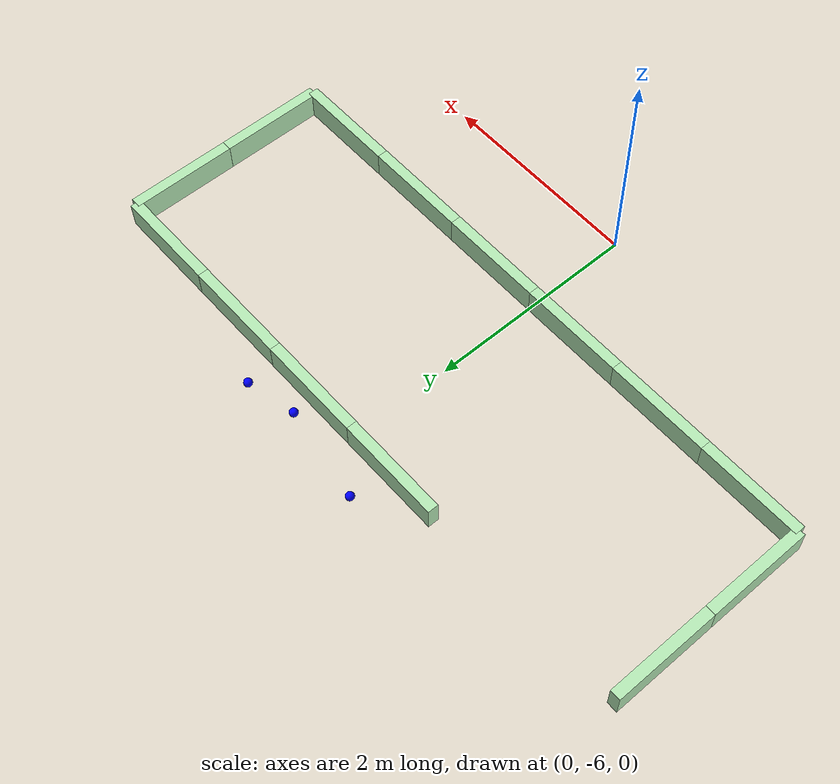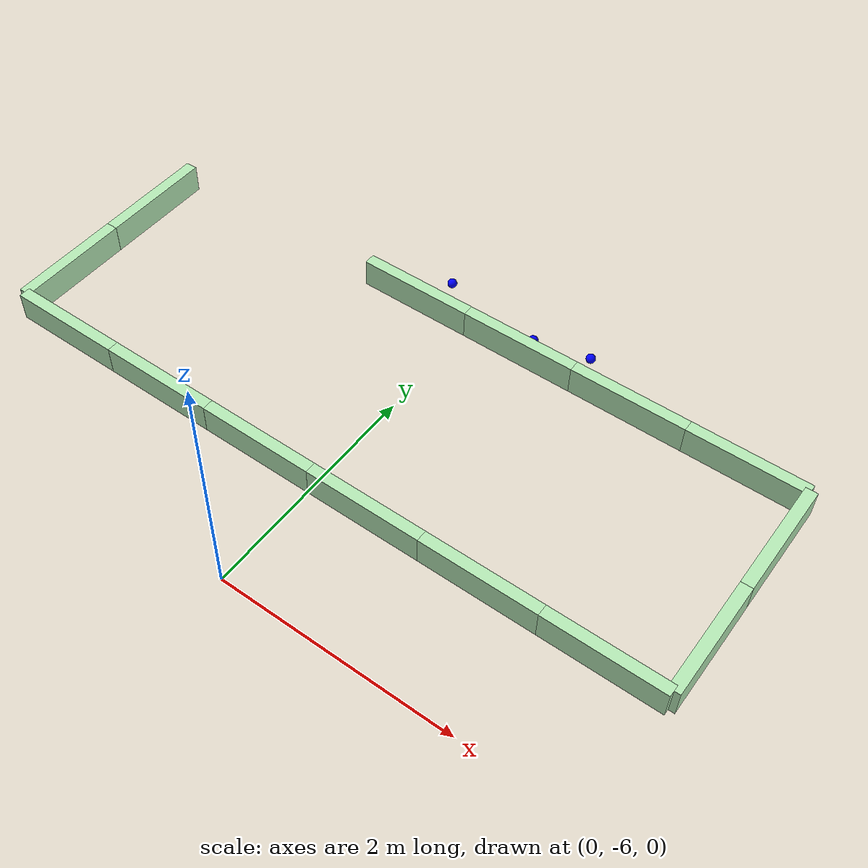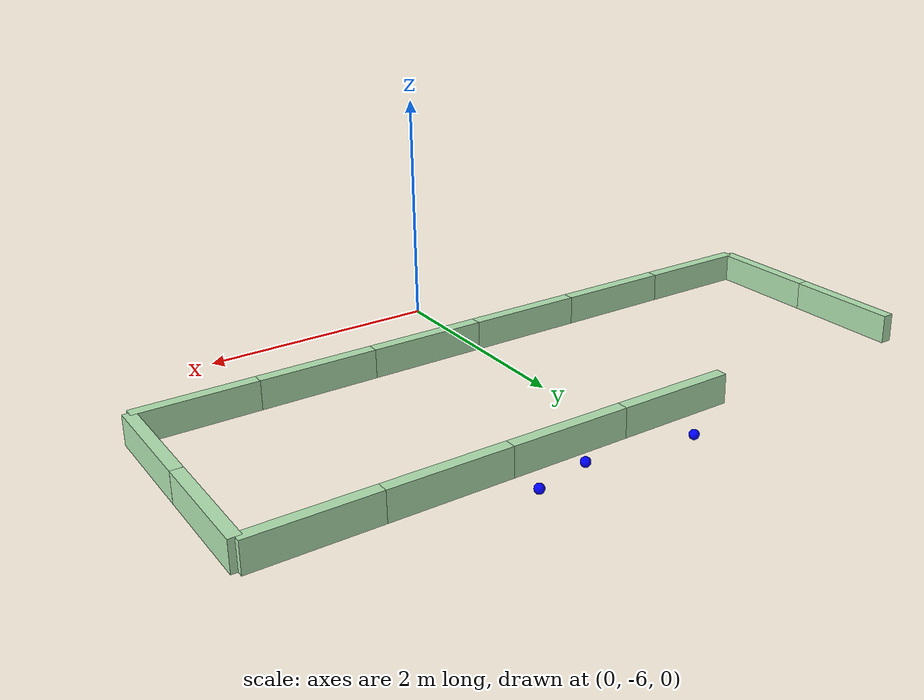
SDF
<sdf version="1.6">
 <world name="default">
  <model name="wall_100_25h_1_clone_3">
   <link name="link">
    <inertial>
     <mass>1</mass>
     <inertia>
      <ixx>0.166667</ixx>
      <ixy>0</ixy>
      <ixz>0</ixz>
      <iyy>0.166667</iyy>
      <iyz>0</iyz>
      <izz>0.166667</izz>
     </inertia>
    </inertial>
    <visual name="visual">
     <geometry><box><size>1 0.1 0.25</size></box></geometry>
     <material>
      <script><name>Gazebo/Grey</name><uri>file://media/materials/scripts/gazebo.material</uri></script>
      <ambient>0.3 0.5 0.3 1</ambient>
      <diffuse>0.7 0.9 0.7 1</diffuse>
      <specular>0.01 0.02 0.01 1</specular>
      <emissive>0 0 0 1</emissive>
      <lighting>1</lighting>
      <shader type="vertex"><normal_map>__default__</normal_map></shader>
     </material>
    </visual>
    <collision name="collision">
     <geometry><box><size>1 0.1 0.25</size></box></geometry>
     <surface>
      <friction>
       <ode><mu>1</mu><mu2>1</mu2><fdir1>0 0 0</fdir1><slip1>0</slip1><slip2>0</slip2></ode>
       <torsional>
        <coefficient>1</coefficient>
        <patch_radius>0</patch_radius>
        <surface_radius>0</surface_radius>
        <use_patch_radius>1</use_patch_radius>
        <ode><slip>0</slip></ode>
       </torsional>
      </friction>
      <bounce><restitution_coefficient>0</restitution_coefficient><threshold>1e+06</threshold></bounce>
      <contact>
       <collide_without_contact>0</collide_without_contact>
       <collide_without_contact_bitmask>1</collide_without_contact_bitmask>
       <collide_bitmask>1</collide_bitmask>
       <ode>
        <soft_cfm>0</soft_cfm>
        <soft_erp>0.2</soft_erp>
        <kp>1e+13</kp>
        <kd>1</kd>
        <max_vel>0.01</max_vel>
        <min_depth>0</min_depth>
       </ode>
       <bullet>
        <split_impulse>1</split_impulse>
        <split_impulse_penetration_threshold>-0.01</split_impulse_penetration_threshold>
        <soft_cfm>0</soft_cfm>
        <soft_erp>0.2</soft_erp>
        <kp>1e+13</kp>
        <kd>1</kd>
       </bullet>
      </contact>
     </surface>
    </collision>
   </link>
   <static>1</static>
   <pose>-0.5 -3 0.125 0.000404 -0 0</pose>
  </model>
  <model name="wall_100_25h_1_clone_4">
   <link name="link">
    <inertial>
     <mass>1</mass>
     <inertia>
      <ixx>0.166667</ixx>
      <ixy>0</ixy>
      <ixz>0</ixz>
      <iyy>0.166667</iyy>
      <iyz>0</iyz>
      <izz>0.166667</izz>
     </inertia>
    </inertial>
    <visual name="visual">
     <geometry><box><size>1 0.1 0.25</size></box></geometry>
     <material>
      <script><name>Gazebo/Grey</name><uri>file://media/materials/scripts/gazebo.material</uri></script>
      <ambient>0.3 0.5 0.3 1</ambient>
      <diffuse>0.7 0.9 0.7 1</diffuse>
      <specular>0.01 0.02 0.01 1</specular>
      <emissive>0 0 0 1</emissive>
      <lighting>1</lighting>
      <shader type="vertex"><normal_map>__default__</normal_map></shader>
     </material>
    </visual>
    <collision name="collision">
     <geometry><box><size>1 0.1 0.25</size></box></geometry>
     <surface>
      <friction>
       <ode><mu>1</mu><mu2>1</mu2><fdir1>0 0 0</fdir1><slip1>0</slip1><slip2>0</slip2></ode>
       <torsional>
        <coefficient>1</coefficient>
        <patch_radius>0</patch_radius>
        <surface_radius>0</surface_radius>
        <use_patch_radius>1</use_patch_radius>
        <ode><slip>0</slip></ode>
       </torsional>
      </friction>
      <bounce><restitution_coefficient>0</restitution_coefficient><threshold>1e+06</threshold></bounce>
      <contact>
       <collide_without_contact>0</collide_without_contact>
       <collide_without_contact_bitmask>1</collide_without_contact_bitmask>
       <collide_bitmask>1</collide_bitmask>
       <ode>
        <soft_cfm>0</soft_cfm>
        <soft_erp>0.2</soft_erp>
        <kp>1e+13</kp>
        <kd>1</kd>
        <max_vel>0.01</max_vel>
        <min_depth>0</min_depth>
       </ode>
       <bullet>
        <split_impulse>1</split_impulse>
        <split_impulse_penetration_threshold>-0.01</split_impulse_penetration_threshold>
        <soft_cfm>0</soft_cfm>
        <soft_erp>0.2</soft_erp>
        <kp>1e+13</kp>
        <kd>1</kd>
       </bullet>
      </contact>
     </surface>
    </collision>
   </link>
   <static>1</static>
   <pose>0.5 -3 0.125 0.000404 -0 0</pose>
  </model>
  <model name="wall_100_25h_1_clone_5">
   <link name="link">
    <inertial>
     <mass>1</mass>
     <inertia>
      <ixx>0.166667</ixx>
      <ixy>0</ixy>
      <ixz>0</ixz>
      <iyy>0.166667</iyy>
      <iyz>0</iyz>
      <izz>0.166667</izz>
     </inertia>
    </inertial>
    <visual name="visual">
     <geometry><box><size>1 0.1 0.25</size></box></geometry>
     <material>
      <script><name>Gazebo/Grey</name><uri>file://media/materials/scripts/gazebo.material</uri></script>
      <ambient>0.3 0.5 0.3 1</ambient>
      <diffuse>0.7 0.9 0.7 1</diffuse>
      <specular>0.01 0.02 0.01 1</specular>
      <emissive>0 0 0 1</emissive>
      <lighting>1</lighting>
      <shader type="vertex"><normal_map>__default__</normal_map></shader>
     </material>
    </visual>
    <collision name="collision">
     <geometry><box><size>1 0.1 0.25</size></box></geometry>
     <surface>
      <friction>
       <ode><mu>1</mu><mu2>1</mu2><fdir1>0 0 0</fdir1><slip1>0</slip1><slip2>0</slip2></ode>
       <torsional>
        <coefficient>1</coefficient>
        <patch_radius>0</patch_radius>
        <surface_radius>0</surface_radius>
        <use_patch_radius>1</use_patch_radius>
        <ode><slip>0</slip></ode>
       </torsional>
      </friction>
      <bounce><restitution_coefficient>0</restitution_coefficient><threshold>1e+06</threshold></bounce>
      <contact>
       <collide_without_contact>0</collide_without_contact>
       <collide_without_contact_bitmask>1</collide_without_contact_bitmask>
       <collide_bitmask>1</collide_bitmask>
       <ode>
        <soft_cfm>0</soft_cfm>
        <soft_erp>0.2</soft_erp>
        <kp>1e+13</kp>
        <kd>1</kd>
        <max_vel>0.01</max_vel>
        <min_depth>0</min_depth>
       </ode>
       <bullet>
        <split_impulse>1</split_impulse>
        <split_impulse_penetration_threshold>-0.01</split_impulse_penetration_threshold>
        <soft_cfm>0</soft_cfm>
        <soft_erp>0.2</soft_erp>
        <kp>1e+13</kp>
        <kd>1</kd>
       </bullet>
      </contact>
     </surface>
    </collision>
   </link>
   <static>1</static>
   <pose>1.5 -3 0.125 0.000404 -0 0</pose>
  </model>
  <model name="wall_100_25h_1_clone_6">
   <link name="link">
    <inertial>
     <mass>1</mass>
     <inertia>
      <ixx>0.166667</ixx>
      <ixy>0</ixy>
      <ixz>0</ixz>
      <iyy>0.166667</iyy>
      <iyz>0</iyz>
      <izz>0.166667</izz>
     </inertia>
    </inertial>
    <visual name="visual">
     <geometry><box><size>1 0.1 0.25</size></box></geometry>
     <material>
      <script><name>Gazebo/Grey</name><uri>file://media/materials/scripts/gazebo.material</uri></script>
      <ambient>0.3 0.5 0.3 1</ambient>
      <diffuse>0.7 0.9 0.7 1</diffuse>
      <specular>0.01 0.02 0.01 1</specular>
      <emissive>0 0 0 1</emissive>
      <lighting>1</lighting>
      <shader type="vertex"><normal_map>__default__</normal_map></shader>
     </material>
    </visual>
    <collision name="collision">
     <geometry><box><size>1 0.1 0.25</size></box></geometry>
     <surface>
      <friction>
       <ode><mu>1</mu><mu2>1</mu2><fdir1>0 0 0</fdir1><slip1>0</slip1><slip2>0</slip2></ode>
       <torsional>
        <coefficient>1</coefficient>
        <patch_radius>0</patch_radius>
        <surface_radius>0</surface_radius>
        <use_patch_radius>1</use_patch_radius>
        <ode><slip>0</slip></ode>
       </torsional>
      </friction>
      <bounce><restitution_coefficient>0</restitution_coefficient><threshold>1e+06</threshold></bounce>
      <contact>
       <collide_without_contact>0</collide_without_contact>
       <collide_without_contact_bitmask>1</collide_without_contact_bitmask>
       <collide_bitmask>1</collide_bitmask>
       <ode>
        <soft_cfm>0</soft_cfm>
        <soft_erp>0.2</soft_erp>
        <kp>1e+13</kp>
        <kd>1</kd>
        <max_vel>0.01</max_vel>
        <min_depth>0</min_depth>
       </ode>
       <bullet>
        <split_impulse>1</split_impulse>
        <split_impulse_penetration_threshold>-0.01</split_impulse_penetration_threshold>
        <soft_cfm>0</soft_cfm>
        <soft_erp>0.2</soft_erp>
        <kp>1e+13</kp>
        <kd>1</kd>
       </bullet>
      </contact>
     </surface>
    </collision>
   </link>
   <static>1</static>
   <pose>2.5 -3 0.125 0.000404 -0 0</pose>
  </model>
  <model name="wall_100_25h_1_clone_9_clone_clone_0">
   <link name="link">
    <inertial>
     <mass>1</mass>
     <inertia>
      <ixx>0.166667</ixx>
      <ixy>0</ixy>
      <ixz>0</ixz>
      <iyy>0.166667</iyy>
      <iyz>0</iyz>
      <izz>0.166667</izz>
     </inertia>
    </inertial>
    <visual name="visual">
     <geometry><box><size>1 0.1 0.25</size></box></geometry>
     <material>
      <script><name>Gazebo/Grey</name><uri>file://media/materials/scripts/gazebo.material</uri></script>
      <ambient>0.3 0.5 0.3 1</ambient>
      <diffuse>0.7 0.9 0.7 1</diffuse>
      <specular>0.01 0.02 0.01 1</specular>
      <emissive>0 0 0 1</emissive>
      <lighting>1</lighting>
      <shader type="vertex"><normal_map>__default__</normal_map></shader>
     </material>
    </visual>
    <collision name="collision">
     <geometry><box><size>1 0.1 0.25</size></box></geometry>
     <surface>
      <friction>
       <ode><mu>1</mu><mu2>1</mu2><fdir1>0 0 0</fdir1><slip1>0</slip1><slip2>0</slip2></ode>
       <torsional>
        <coefficient>1</coefficient>
        <patch_radius>0</patch_radius>
        <surface_radius>0</surface_radius>
        <use_patch_radius>1</use_patch_radius>
        <ode><slip>0</slip></ode>
       </torsional>
      </friction>
      <bounce><restitution_coefficient>0</restitution_coefficient><threshold>1e+06</threshold></bounce>
      <contact>
       <collide_without_contact>0</collide_without_contact>
       <collide_without_contact_bitmask>1</collide_without_contact_bitmask>
       <collide_bitmask>1</collide_bitmask>
       <ode>
        <soft_cfm>0</soft_cfm>
        <soft_erp>0.2</soft_erp>
        <kp>1e+13</kp>
        <kd>1</kd>
        <max_vel>0.01</max_vel>
        <min_depth>0</min_depth>
       </ode>
       <bullet>
        <split_impulse>1</split_impulse>
        <split_impulse_penetration_threshold>-0.01</split_impulse_penetration_threshold>
        <soft_cfm>0</soft_cfm>
        <soft_erp>0.2</soft_erp>
        <kp>1e+13</kp>
        <kd>1</kd>
       </bullet>
      </contact>
     </surface>
    </collision>
   </link>
   <static>1</static>
   <pose>-3 -3.5 0.125 0 0.000404 -1.57111</pose>
  </model>
  <model name="wall_100_25h_1_clone_9_clone_clone_1">
   <link name="link">
    <inertial>
     <mass>1</mass>
     <inertia>
      <ixx>0.166667</ixx>
      <ixy>0</ixy>
      <ixz>0</ixz>
      <iyy>0.166667</iyy>
      <iyz>0</iyz>
      <izz>0.166667</izz>
     </inertia>
    </inertial>
    <visual name="visual">
     <geometry><box><size>1 0.1 0.25</size></box></geometry>
     <material>
      <script><name>Gazebo/Grey</name><uri>file://media/materials/scripts/gazebo.material</uri></script>
      <ambient>0.3 0.5 0.3 1</ambient>
      <diffuse>0.7 0.9 0.7 1</diffuse>
      <specular>0.01 0.02 0.01 1</specular>
      <emissive>0 0 0 1</emissive>
      <lighting>1</lighting>
      <shader type="vertex"><normal_map>__default__</normal_map></shader>
     </material>
    </visual>
    <collision name="collision">
     <geometry><box><size>1 0.1 0.25</size></box></geometry>
     <surface>
      <friction>
       <ode><mu>1</mu><mu2>1</mu2><fdir1>0 0 0</fdir1><slip1>0</slip1><slip2>0</slip2></ode>
       <torsional>
        <coefficient>1</coefficient>
        <patch_radius>0</patch_radius>
        <surface_radius>0</surface_radius>
        <use_patch_radius>1</use_patch_radius>
        <ode><slip>0</slip></ode>
       </torsional>
      </friction>
      <bounce><restitution_coefficient>0</restitution_coefficient><threshold>1e+06</threshold></bounce>
      <contact>
       <collide_without_contact>0</collide_without_contact>
       <collide_without_contact_bitmask>1</collide_without_contact_bitmask>
       <collide_bitmask>1</collide_bitmask>
       <ode>
        <soft_cfm>0</soft_cfm>
        <soft_erp>0.2</soft_erp>
        <kp>1e+13</kp>
        <kd>1</kd>
        <max_vel>0.01</max_vel>
        <min_depth>0</min_depth>
       </ode>
       <bullet>
        <split_impulse>1</split_impulse>
        <split_impulse_penetration_threshold>-0.01</split_impulse_penetration_threshold>
        <soft_cfm>0</soft_cfm>
        <soft_erp>0.2</soft_erp>
        <kp>1e+13</kp>
        <kd>1</kd>
       </bullet>
      </contact>
     </surface>
    </collision>
   </link>
   <static>1</static>
   <pose>-3 -4.5 0.125 0 0.000404 -1.57111</pose>
  </model>
  <model name="wall_100_25h_1_clone_9_clone_clone_2">
   <link name="link">
    <inertial>
     <mass>1</mass>
     <inertia>
      <ixx>0.166667</ixx>
      <ixy>0</ixy>
      <ixz>0</ixz>
      <iyy>0.166667</iyy>
      <iyz>0</iyz>
      <izz>0.166667</izz>
     </inertia>
    </inertial>
    <visual name="visual">
     <geometry><box><size>1 0.1 0.25</size></box></geometry>
     <material>
      <script><name>Gazebo/Grey</name><uri>file://media/materials/scripts/gazebo.material</uri></script>
      <ambient>0.3 0.5 0.3 1</ambient>
      <diffuse>0.7 0.9 0.7 1</diffuse>
      <specular>0.01 0.02 0.01 1</specular>
      <emissive>0 0 0 1</emissive>
      <lighting>1</lighting>
      <shader type="vertex"><normal_map>__default__</normal_map></shader>
     </material>
    </visual>
    <collision name="collision">
     <geometry><box><size>1 0.1 0.25</size></box></geometry>
     <surface>
      <friction>
       <ode><mu>1</mu><mu2>1</mu2><fdir1>0 0 0</fdir1><slip1>0</slip1><slip2>0</slip2></ode>
       <torsional>
        <coefficient>1</coefficient>
        <patch_radius>0</patch_radius>
        <surface_radius>0</surface_radius>
        <use_patch_radius>1</use_patch_radius>
        <ode><slip>0</slip></ode>
       </torsional>
      </friction>
      <bounce><restitution_coefficient>0</restitution_coefficient><threshold>1e+06</threshold></bounce>
      <contact>
       <collide_without_contact>0</collide_without_contact>
       <collide_without_contact_bitmask>1</collide_without_contact_bitmask>
       <collide_bitmask>1</collide_bitmask>
       <ode>
        <soft_cfm>0</soft_cfm>
        <soft_erp>0.2</soft_erp>
        <kp>1e+13</kp>
        <kd>1</kd>
        <max_vel>0.01</max_vel>
        <min_depth>0</min_depth>
       </ode>
       <bullet>
        <split_impulse>1</split_impulse>
        <split_impulse_penetration_threshold>-0.01</split_impulse_penetration_threshold>
        <soft_cfm>0</soft_cfm>
        <soft_erp>0.2</soft_erp>
        <kp>1e+13</kp>
        <kd>1</kd>
       </bullet>
      </contact>
     </surface>
    </collision>
   </link>
   <static>1</static>
   <pose>3 -3.5 0.125 0 0.000404 -1.57111</pose>
  </model>
  <model name="wall_100_25h_1_clone_9_clone_clone_3">
   <link name="link">
    <inertial>
     <mass>1</mass>
     <inertia>
      <ixx>0.166667</ixx>
      <ixy>0</ixy>
      <ixz>0</ixz>
      <iyy>0.166667</iyy>
      <iyz>0</iyz>
      <izz>0.166667</izz>
     </inertia>
    </inertial>
    <visual name="visual">
     <geometry><box><size>1 0.1 0.25</size></box></geometry>
     <material>
      <script><name>Gazebo/Grey</name><uri>file://media/materials/scripts/gazebo.material</uri></script>
      <ambient>0.3 0.5 0.3 1</ambient>
      <diffuse>0.7 0.9 0.7 1</diffuse>
      <specular>0.01 0.02 0.01 1</specular>
      <emissive>0 0 0 1</emissive>
      <lighting>1</lighting>
      <shader type="vertex"><normal_map>__default__</normal_map></shader>
     </material>
    </visual>
    <collision name="collision">
     <geometry><box><size>1 0.1 0.25</size></box></geometry>
     <surface>
      <friction>
       <ode><mu>1</mu><mu2>1</mu2><fdir1>0 0 0</fdir1><slip1>0</slip1><slip2>0</slip2></ode>
       <torsional>
        <coefficient>1</coefficient>
        <patch_radius>0</patch_radius>
        <surface_radius>0</surface_radius>
        <use_patch_radius>1</use_patch_radius>
        <ode><slip>0</slip></ode>
       </torsional>
      </friction>
      <bounce><restitution_coefficient>0</restitution_coefficient><threshold>1e+06</threshold></bounce>
      <contact>
       <collide_without_contact>0</collide_without_contact>
       <collide_without_contact_bitmask>1</collide_without_contact_bitmask>
       <collide_bitmask>1</collide_bitmask>
       <ode>
        <soft_cfm>0</soft_cfm>
        <soft_erp>0.2</soft_erp>
        <kp>1e+13</kp>
        <kd>1</kd>
        <max_vel>0.01</max_vel>
        <min_depth>0</min_depth>
       </ode>
       <bullet>
        <split_impulse>1</split_impulse>
        <split_impulse_penetration_threshold>-0.01</split_impulse_penetration_threshold>
        <soft_cfm>0</soft_cfm>
        <soft_erp>0.2</soft_erp>
        <kp>1e+13</kp>
        <kd>1</kd>
       </bullet>
      </contact>
     </surface>
    </collision>
   </link>
   <static>1</static>
   <pose>3 -4.5 0.125 0 0.000404 -1.57111</pose>
  </model>
  <model name="wall_100_25h_1_clone_3_clone">
   <link name="link">
    <inertial>
     <mass>1</mass>
     <inertia>
      <ixx>0.166667</ixx>
      <ixy>0</ixy>
      <ixz>0</ixz>
      <iyy>0.166667</iyy>
      <iyz>0</iyz>
      <izz>0.166667</izz>
     </inertia>
    </inertial>
    <visual name="visual">
     <geometry><box><size>1 0.1 0.25</size></box></geometry>
     <material>
      <script><name>Gazebo/Grey</name><uri>file://media/materials/scripts/gazebo.material</uri></script>
      <ambient>0.3 0.5 0.3 1</ambient>
      <diffuse>0.7 0.9 0.7 1</diffuse>
      <specular>0.01 0.02 0.01 1</specular>
      <emissive>0 0 0 1</emissive>
      <lighting>1</lighting>
      <shader type="vertex"><normal_map>__default__</normal_map></shader>
     </material>
    </visual>
    <collision name="collision">
     <geometry><box><size>1 0.1 0.25</size></box></geometry>
     <surface>
      <friction>
       <ode><mu>1</mu><mu2>1</mu2><fdir1>0 0 0</fdir1><slip1>0</slip1><slip2>0</slip2></ode>
       <torsional>
        <coefficient>1</coefficient>
        <patch_radius>0</patch_radius>
        <surface_radius>0</surface_radius>
        <use_patch_radius>1</use_patch_radius>
        <ode><slip>0</slip></ode>
       </torsional>
      </friction>
      <bounce><restitution_coefficient>0</restitution_coefficient><threshold>1e+06</threshold></bounce>
      <contact>
       <collide_without_contact>0</collide_without_contact>
       <collide_without_contact_bitmask>1</collide_without_contact_bitmask>
       <collide_bitmask>1</collide_bitmask>
       <ode>
        <soft_cfm>0</soft_cfm>
        <soft_erp>0.2</soft_erp>
        <kp>1e+13</kp>
        <kd>1</kd>
        <max_vel>0.01</max_vel>
        <min_depth>0</min_depth>
       </ode>
       <bullet>
        <split_impulse>1</split_impulse>
        <split_impulse_penetration_threshold>-0.01</split_impulse_penetration_threshold>
        <soft_cfm>0</soft_cfm>
        <soft_erp>0.2</soft_erp>
        <kp>1e+13</kp>
        <kd>1</kd>
       </bullet>
      </contact>
     </surface>
    </collision>
   </link>
   <static>1</static>
   <pose>-2.5 -5 0.125 0.000404 -0 0</pose>
  </model>
  <model name="wall_100_25h_1_clone_3_clone_0">
   <link name="link">
    <inertial>
     <mass>1</mass>
     <inertia>
      <ixx>0.166667</ixx>
      <ixy>0</ixy>
      <ixz>0</ixz>
      <iyy>0.166667</iyy>
      <iyz>0</iyz>
      <izz>0.166667</izz>
     </inertia>
    </inertial>
    <visual name="visual">
     <geometry><box><size>1 0.1 0.25</size></box></geometry>
     <material>
      <script><name>Gazebo/Grey</name><uri>file://media/materials/scripts/gazebo.material</uri></script>
      <ambient>0.3 0.5 0.3 1</ambient>
      <diffuse>0.7 0.9 0.7 1</diffuse>
      <specular>0.01 0.02 0.01 1</specular>
      <emissive>0 0 0 1</emissive>
      <lighting>1</lighting>
      <shader type="vertex"><normal_map>__default__</normal_map></shader>
     </material>
    </visual>
    <collision name="collision">
     <geometry><box><size>1 0.1 0.25</size></box></geometry>
     <surface>
      <friction>
       <ode><mu>1</mu><mu2>1</mu2><fdir1>0 0 0</fdir1><slip1>0</slip1><slip2>0</slip2></ode>
       <torsional>
        <coefficient>1</coefficient>
        <patch_radius>0</patch_radius>
        <surface_radius>0</surface_radius>
        <use_patch_radius>1</use_patch_radius>
        <ode><slip>0</slip></ode>
       </torsional>
      </friction>
      <bounce><restitution_coefficient>0</restitution_coefficient><threshold>1e+06</threshold></bounce>
      <contact>
       <collide_without_contact>0</collide_without_contact>
       <collide_without_contact_bitmask>1</collide_without_contact_bitmask>
       <collide_bitmask>1</collide_bitmask>
       <ode>
        <soft_cfm>0</soft_cfm>
        <soft_erp>0.2</soft_erp>
        <kp>1e+13</kp>
        <kd>1</kd>
        <max_vel>0.01</max_vel>
        <min_depth>0</min_depth>
       </ode>
       <bullet>
        <split_impulse>1</split_impulse>
        <split_impulse_penetration_threshold>-0.01</split_impulse_penetration_threshold>
        <soft_cfm>0</soft_cfm>
        <soft_erp>0.2</soft_erp>
        <kp>1e+13</kp>
        <kd>1</kd>
       </bullet>
      </contact>
     </surface>
    </collision>
   </link>
   <static>1</static>
   <pose>-1.5 -5 0.125 0.000404 -0 0</pose>
  </model>
  <model name="wall_100_25h_1_clone_3_clone_1">
   <link name="link">
    <inertial>
     <mass>1</mass>
     <inertia>
      <ixx>0.166667</ixx>
      <ixy>0</ixy>
      <ixz>0</ixz>
      <iyy>0.166667</iyy>
      <iyz>0</iyz>
      <izz>0.166667</izz>
     </inertia>
    </inertial>
    <visual name="visual">
     <geometry><box><size>1 0.1 0.25</size></box></geometry>
     <material>
      <script><name>Gazebo/Grey</name><uri>file://media/materials/scripts/gazebo.material</uri></script>
      <ambient>0.3 0.5 0.3 1</ambient>
      <diffuse>0.7 0.9 0.7 1</diffuse>
      <specular>0.01 0.02 0.01 1</specular>
      <emissive>0 0 0 1</emissive>
      <lighting>1</lighting>
      <shader type="vertex"><normal_map>__default__</normal_map></shader>
     </material>
    </visual>
    <collision name="collision">
     <geometry><box><size>1 0.1 0.25</size></box></geometry>
     <surface>
      <friction>
       <ode><mu>1</mu><mu2>1</mu2><fdir1>0 0 0</fdir1><slip1>0</slip1><slip2>0</slip2></ode>
       <torsional>
        <coefficient>1</coefficient>
        <patch_radius>0</patch_radius>
        <surface_radius>0</surface_radius>
        <use_patch_radius>1</use_patch_radius>
        <ode><slip>0</slip></ode>
       </torsional>
      </friction>
      <bounce><restitution_coefficient>0</restitution_coefficient><threshold>1e+06</threshold></bounce>
      <contact>
       <collide_without_contact>0</collide_without_contact>
       <collide_without_contact_bitmask>1</collide_without_contact_bitmask>
       <collide_bitmask>1</collide_bitmask>
       <ode>
        <soft_cfm>0</soft_cfm>
        <soft_erp>0.2</soft_erp>
        <kp>1e+13</kp>
        <kd>1</kd>
        <max_vel>0.01</max_vel>
        <min_depth>0</min_depth>
       </ode>
       <bullet>
        <split_impulse>1</split_impulse>
        <split_impulse_penetration_threshold>-0.01</split_impulse_penetration_threshold>
        <soft_cfm>0</soft_cfm>
        <soft_erp>0.2</soft_erp>
        <kp>1e+13</kp>
        <kd>1</kd>
       </bullet>
      </contact>
     </surface>
    </collision>
   </link>
   <static>1</static>
   <pose>-0.5 -5 0.125 0.000404 -0 0</pose>
  </model>
  <model name="wall_100_25h_1_clone_3_clone_2">
   <link name="link">
    <inertial>
     <mass>1</mass>
     <inertia>
      <ixx>0.166667</ixx>
      <ixy>0</ixy>
      <ixz>0</ixz>
      <iyy>0.166667</iyy>
      <iyz>0</iyz>
      <izz>0.166667</izz>
     </inertia>
    </inertial>
    <visual name="visual">
     <geometry><box><size>1 0.1 0.25</size></box></geometry>
     <material>
      <script><name>Gazebo/Grey</name><uri>file://media/materials/scripts/gazebo.material</uri></script>
      <ambient>0.3 0.5 0.3 1</ambient>
      <diffuse>0.7 0.9 0.7 1</diffuse>
      <specular>0.01 0.02 0.01 1</specular>
      <emissive>0 0 0 1</emissive>
      <lighting>1</lighting>
      <shader type="vertex"><normal_map>__default__</normal_map></shader>
     </material>
    </visual>
    <collision name="collision">
     <geometry><box><size>1 0.1 0.25</size></box></geometry>
     <surface>
      <friction>
       <ode><mu>1</mu><mu2>1</mu2><fdir1>0 0 0</fdir1><slip1>0</slip1><slip2>0</slip2></ode>
       <torsional>
        <coefficient>1</coefficient>
        <patch_radius>0</patch_radius>
        <surface_radius>0</surface_radius>
        <use_patch_radius>1</use_patch_radius>
        <ode><slip>0</slip></ode>
       </torsional>
      </friction>
      <bounce><restitution_coefficient>0</restitution_coefficient><threshold>1e+06</threshold></bounce>
      <contact>
       <collide_without_contact>0</collide_without_contact>
       <collide_without_contact_bitmask>1</collide_without_contact_bitmask>
       <collide_bitmask>1</collide_bitmask>
       <ode>
        <soft_cfm>0</soft_cfm>
        <soft_erp>0.2</soft_erp>
        <kp>1e+13</kp>
        <kd>1</kd>
        <max_vel>0.01</max_vel>
        <min_depth>0</min_depth>
       </ode>
       <bullet>
        <split_impulse>1</split_impulse>
        <split_impulse_penetration_threshold>-0.01</split_impulse_penetration_threshold>
        <soft_cfm>0</soft_cfm>
        <soft_erp>0.2</soft_erp>
        <kp>1e+13</kp>
        <kd>1</kd>
       </bullet>
      </contact>
     </surface>
    </collision>
   </link>
   <static>1</static>
   <pose>0.5 -5 0.125 0.000404 -0 0</pose>
  </model>
  <model name="wall_100_25h_1_clone_3_clone_3">
   <link name="link">
    <inertial>
     <mass>1</mass>
     <inertia>
      <ixx>0.166667</ixx>
      <ixy>0</ixy>
      <ixz>0</ixz>
      <iyy>0.166667</iyy>
      <iyz>0</iyz>
      <izz>0.166667</izz>
     </inertia>
    </inertial>
    <visual name="visual">
     <geometry><box><size>1 0.1 0.25</size></box></geometry>
     <material>
      <script><name>Gazebo/Grey</name><uri>file://media/materials/scripts/gazebo.material</uri></script>
      <ambient>0.3 0.5 0.3 1</ambient>
      <diffuse>0.7 0.9 0.7 1</diffuse>
      <specular>0.01 0.02 0.01 1</specular>
      <emissive>0 0 0 1</emissive>
      <lighting>1</lighting>
      <shader type="vertex"><normal_map>__default__</normal_map></shader>
     </material>
    </visual>
    <collision name="collision">
     <geometry><box><size>1 0.1 0.25</size></box></geometry>
     <surface>
      <friction>
       <ode><mu>1</mu><mu2>1</mu2><fdir1>0 0 0</fdir1><slip1>0</slip1><slip2>0</slip2></ode>
       <torsional>
        <coefficient>1</coefficient>
        <patch_radius>0</patch_radius>
        <surface_radius>0</surface_radius>
        <use_patch_radius>1</use_patch_radius>
        <ode><slip>0</slip></ode>
       </torsional>
      </friction>
      <bounce><restitution_coefficient>0</restitution_coefficient><threshold>1e+06</threshold></bounce>
      <contact>
       <collide_without_contact>0</collide_without_contact>
       <collide_without_contact_bitmask>1</collide_without_contact_bitmask>
       <collide_bitmask>1</collide_bitmask>
       <ode>
        <soft_cfm>0</soft_cfm>
        <soft_erp>0.2</soft_erp>
        <kp>1e+13</kp>
        <kd>1</kd>
        <max_vel>0.01</max_vel>
        <min_depth>0</min_depth>
       </ode>
       <bullet>
        <split_impulse>1</split_impulse>
        <split_impulse_penetration_threshold>-0.01</split_impulse_penetration_threshold>
        <soft_cfm>0</soft_cfm>
        <soft_erp>0.2</soft_erp>
        <kp>1e+13</kp>
        <kd>1</kd>
       </bullet>
      </contact>
     </surface>
    </collision>
   </link>
   <static>1</static>
   <pose>1.5 -5 0.125 0.000404 -0 0</pose>
  </model>
  <model name="wall_100_25h_1_clone_3_clone_4">
   <link name="link">
    <inertial>
     <mass>1</mass>
     <inertia>
      <ixx>0.166667</ixx>
      <ixy>0</ixy>
      <ixz>0</ixz>
      <iyy>0.166667</iyy>
      <iyz>0</iyz>
      <izz>0.166667</izz>
     </inertia>
    </inertial>
    <visual name="visual">
     <geometry><box><size>1 0.1 0.25</size></box></geometry>
     <material>
      <script><name>Gazebo/Grey</name><uri>file://media/materials/scripts/gazebo.material</uri></script>
      <ambient>0.3 0.5 0.3 1</ambient>
      <diffuse>0.7 0.9 0.7 1</diffuse>
      <specular>0.01 0.02 0.01 1</specular>
      <emissive>0 0 0 1</emissive>
      <lighting>1</lighting>
      <shader type="vertex"><normal_map>__default__</normal_map></shader>
     </material>
    </visual>
    <collision name="collision">
     <geometry><box><size>1 0.1 0.25</size></box></geometry>
     <surface>
      <friction>
       <ode><mu>1</mu><mu2>1</mu2><fdir1>0 0 0</fdir1><slip1>0</slip1><slip2>0</slip2></ode>
       <torsional>
        <coefficient>1</coefficient>
        <patch_radius>0</patch_radius>
        <surface_radius>0</surface_radius>
        <use_patch_radius>1</use_patch_radius>
        <ode><slip>0</slip></ode>
       </torsional>
      </friction>
      <bounce><restitution_coefficient>0</restitution_coefficient><threshold>1e+06</threshold></bounce>
      <contact>
       <collide_without_contact>0</collide_without_contact>
       <collide_without_contact_bitmask>1</collide_without_contact_bitmask>
       <collide_bitmask>1</collide_bitmask>
       <ode>
        <soft_cfm>0</soft_cfm>
        <soft_erp>0.2</soft_erp>
        <kp>1e+13</kp>
        <kd>1</kd>
        <max_vel>0.01</max_vel>
        <min_depth>0</min_depth>
       </ode>
       <bullet>
        <split_impulse>1</split_impulse>
        <split_impulse_penetration_threshold>-0.01</split_impulse_penetration_threshold>
        <soft_cfm>0</soft_cfm>
        <soft_erp>0.2</soft_erp>
        <kp>1e+13</kp>
        <kd>1</kd>
       </bullet>
      </contact>
     </surface>
    </collision>
   </link>
   <static>1</static>
   <pose>2.5 -5 0.125 0.000404 -0 0</pose>
  </model>
  <model name="Untitled_2">
   <model name="blue_ball">
    <link name="link">
     <pose>0 0 0.04 0 -0 0</pose>
     <inertial>
      <mass>0.01</mass>
      <inertia><ixx>0.001</ixx><ixy>0</ixy><ixz>0</ixz><iyy>0.001</iyy><iyz>0</iyz><izz>0.001</izz></inertia>
     </inertial>
     <visual name="visual">
      <geometry><sphere><radius>0.04</radius></sphere></geometry>
      <material>
       <script><name>Gazebo/Grey</name><uri>file://media/materials/scripts/gazebo.material</uri></script>
       <ambient>0 0 1 1</ambient>
       <diffuse>0 0 1 1</diffuse>
       <specular>0 0 0.01 1</specular>
       <emissive>0 0 0 1</emissive>
      </material>
     </visual>
     <collision name="collision">
      <geometry><sphere><radius>0.04</radius></sphere></geometry>
      <surface>
       <friction>
        <ode><mu>1</mu><mu2>1</mu2><fdir1>0 0 0</fdir1><slip1>0</slip1><slip2>0</slip2></ode>
        <torsional>
         <coefficient>1</coefficient>
         <patch_radius>0</patch_radius>
         <surface_radius>0</surface_radius>
         <use_patch_radius>1</use_patch_radius>
         <ode><slip>0</slip></ode>
        </torsional>
       </friction>
       <bounce><restitution_coefficient>0.8</restitution_coefficient><threshold>1</threshold></bounce>
       <contact>
        <collide_without_contact>0</collide_without_contact>
        <collide_without_contact_bitmask>1</collide_without_contact_bitmask>
        <collide_bitmask>1</collide_bitmask>
        <ode>
         <soft_cfm>0</soft_cfm>
         <soft_erp>0.2</soft_erp>
         <kp>1e+13</kp>
         <kd>1</kd>
         <max_vel>0.01</max_vel>
         <min_depth>0</min_depth>
        </ode>
        <bullet>
         <split_impulse>1</split_impulse>
         <split_impulse_penetration_threshold>-0.01</split_impulse_penetration_threshold>
         <soft_cfm>0</soft_cfm>
         <soft_erp>0.2</soft_erp>
         <kp>1e+13</kp>
         <kd>1</kd>
        </bullet>
       </contact>
      </surface>
     </collision>
    </link>
    <static>0</static>
    <pose>0.141543 -0.082852 0 0 -0 0</pose>
   </model>
   <model name="blue_ball_0">
    <link name="link">
     <pose>0 0 0.04 0 -0 0</pose>
     <inertial>
      <mass>0.01</mass>
      <inertia><ixx>0.001</ixx><ixy>0</ixy><ixz>0</ixz><iyy>0.001</iyy><iyz>0</iyz><izz>0.001</izz></inertia>
     </inertial>
     <visual name="visual">
      <geometry><sphere><radius>0.04</radius></sphere></geometry>
      <material>
       <script><name>Gazebo/Grey</name><uri>file://media/materials/scripts/gazebo.material</uri></script>
       <ambient>0 0 1 1</ambient>
       <diffuse>0 0 1 1</diffuse>
       <specular>0 0 0.01 1</specular>
       <emissive>0 0 0 1</emissive>
      </material>
     </visual>
     <collision name="collision">
      <geometry><sphere><radius>0.04</radius></sphere></geometry>
      <surface>
       <friction>
        <ode><mu>1</mu><mu2>1</mu2><fdir1>0 0 0</fdir1><slip1>0</slip1><slip2>0</slip2></ode>
        <torsional>
         <coefficient>1</coefficient>
         <patch_radius>0</patch_radius>
         <surface_radius>0</surface_radius>
         <use_patch_radius>1</use_patch_radius>
         <ode><slip>0</slip></ode>
        </torsional>
       </friction>
       <bounce><restitution_coefficient>0.8</restitution_coefficient><threshold>1</threshold></bounce>
       <contact>
        <collide_without_contact>0</collide_without_contact>
        <collide_without_contact_bitmask>1</collide_without_contact_bitmask>
        <collide_bitmask>1</collide_bitmask>
        <ode>
         <soft_cfm>0</soft_cfm>
         <soft_erp>0.2</soft_erp>
         <kp>1e+13</kp>
         <kd>1</kd>
         <max_vel>0.01</max_vel>
         <min_depth>0</min_depth>
        </ode>
        <bullet>
         <split_impulse>1</split_impulse>
         <split_impulse_penetration_threshold>-0.01</split_impulse_penetration_threshold>
         <soft_cfm>0</soft_cfm>
         <soft_erp>0.2</soft_erp>
         <kp>1e+13</kp>
         <kd>1</kd>
        </bullet>
       </contact>
      </surface>
     </collision>
    </link>
    <static>0</static>
    <pose>0.619209 0.023812 0 0 -0 0</pose>
   </model>
   <model name="blue_ball_1">
    <link name="link">
     <pose>0 0 0.04 0 -0 0</pose>
     <inertial>
      <mass>0.01</mass>
      <inertia><ixx>0.001</ixx><ixy>0</ixy><ixz>0</ixz><iyy>0.001</iyy><iyz>0</iyz><izz>0.001</izz></inertia>
     </inertial>
     <visual name="visual">
      <geometry><sphere><radius>0.04</radius></sphere></geometry>
      <material>
       <script><name>Gazebo/Grey</name><uri>file://media/materials/scripts/gazebo.material</uri></script>
       <ambient>0 0 1 1</ambient>
       <diffuse>0 0 1 1</diffuse>
       <specular>0 0 0.01 1</specular>
       <emissive>0 0 0 1</emissive>
      </material>
     </visual>
     <collision name="collision">
      <geometry><sphere><radius>0.04</radius></sphere></geometry>
      <surface>
       <friction>
        <ode><mu>1</mu><mu2>1</mu2><fdir1>0 0 0</fdir1><slip1>0</slip1><slip2>0</slip2></ode>
        <torsional>
         <coefficient>1</coefficient>
         <patch_radius>0</patch_radius>
         <surface_radius>0</surface_radius>
         <use_patch_radius>1</use_patch_radius>
         <ode><slip>0</slip></ode>
        </torsional>
       </friction>
       <bounce><restitution_coefficient>0.8</restitution_coefficient><threshold>1</threshold></bounce>
       <contact>
        <collide_without_contact>0</collide_without_contact>
        <collide_without_contact_bitmask>1</collide_without_contact_bitmask>
        <collide_bitmask>1</collide_bitmask>
        <ode>
         <soft_cfm>0</soft_cfm>
         <soft_erp>0.2</soft_erp>
         <kp>1e+13</kp>
         <kd>1</kd>
         <max_vel>0.01</max_vel>
         <min_depth>0</min_depth>
        </ode>
        <bullet>
         <split_impulse>1</split_impulse>
         <split_impulse_penetration_threshold>-0.01</split_impulse_penetration_threshold>
         <soft_cfm>0</soft_cfm>
         <soft_erp>0.2</soft_erp>
         <kp>1e+13</kp>
         <kd>1</kd>
        </bullet>
       </contact>
      </surface>
     </collision>
    </link>
    <static>0</static>
    <pose>-0.760752 0.059037 0 0 -0 0</pose>
   </model>
   <static>0</static>
   <pose>0.36218 -2.70395 0 0 -0 0</pose>
  </model>
 </world>
</sdf>
